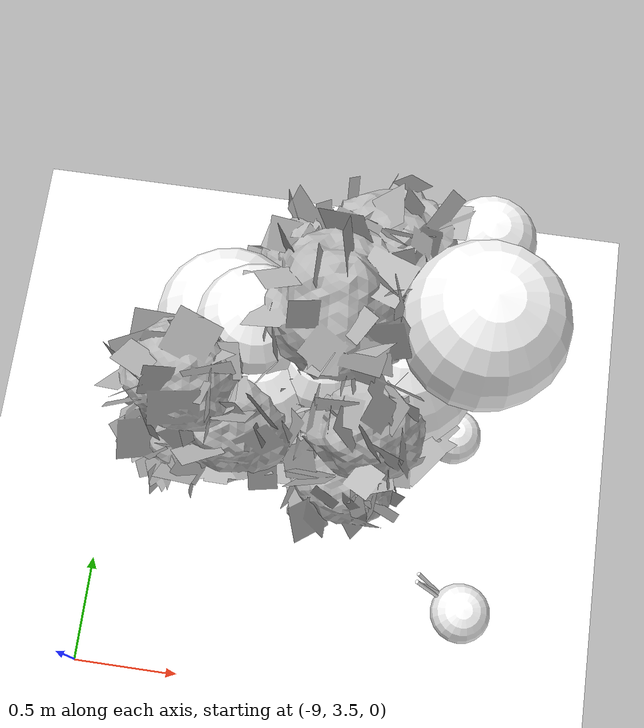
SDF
<sdf version="1.11">
 <world name="peach_orchard">
  <model name="ground">
   <static>true</static>
   <link name="link">
    <visual name="soil">
     <geometry><plane><normal>0 0 1</normal><size>32 22</size></plane></geometry>
     <material>
      <ambient>1 1 1 1</ambient>
      <diffuse>1 1 1 1</diffuse>
      <specular>0.1 0.1 0.1 1</specular>
      <pbr>
       <metal>
        <albedo_map>textures/soil_albedo.png</albedo_map>
        <normal_map type="tangent">textures/soil_normal.png</normal_map>
        <roughness>0.95</roughness>
        <metalness>0</metalness>
       </metal>
      </pbr>
     </material>
    </visual>
    <collision name="c_soil">
     <geometry><plane><normal>0 0 1</normal><size>32 22</size></plane></geometry>
    </collision>
   </link>
  </model>
  <model name="tree_r0_t5">
   <pose>-8 4.4 0 0 0 0</pose>
   <static>true</static>
   <link name="link">
    <visual name="tree_mesh">
     <pose>0 0 0 0 0 -0.231092</pose>
     <geometry>
      <mesh><uri>model://peach_sim/meshes/peach_tree_b.glb</uri><scale>0.994972 0.994972 0.994972</scale></mesh>
     </geometry>
    </visual>
    <visual name="trunk_0">
     <pose>0 0 0.173514 0 0 0</pose>
     <geometry><cylinder><radius>0.0532419</radius><length>0.347028</length></cylinder></geometry>
     <material>
      <ambient>1 1 1 1</ambient>
      <diffuse>1 1 1 1</diffuse>
      <specular>0.1 0.1 0.1 1</specular>
      <pbr>
       <metal>
        <albedo_map>textures/bark_albedo.png</albedo_map>
        <normal_map type="tangent">textures/bark_normal.png</normal_map>
        <roughness>0.9</roughness>
        <metalness>0</metalness>
       </metal>
      </pbr>
     </material>
    </visual>
    <collision name="c_trunk_0">
     <pose>0 0 0.173514 0 0 0</pose>
     <geometry><cylinder><radius>0.0532419</radius><length>0.347028</length></cylinder></geometry>
    </collision>
    <visual name="trunk_1">
     <pose>0 0 0.488994 0 0 0</pose>
     <geometry><cylinder><radius>0.0383341</radius><length>0.283932</length></cylinder></geometry>
     <material>
      <ambient>1 1 1 1</ambient>
      <diffuse>1 1 1 1</diffuse>
      <specular>0.1 0.1 0.1 1</specular>
      <pbr>
       <metal>
        <albedo_map>textures/bark_albedo.png</albedo_map>
        <normal_map type="tangent">textures/bark_normal.png</normal_map>
        <roughness>0.9</roughness>
        <metalness>0</metalness>
       </metal>
      </pbr>
     </material>
    </visual>
    <collision name="c_trunk_1">
     <pose>0 0 0.488994 0 0 0</pose>
     <geometry><cylinder><radius>0.0383341</radius><length>0.283932</length></cylinder></geometry>
    </collision>
    <visual name="root_flare">
     <pose>0 0 0.035 0 0 0</pose>
     <geometry><cylinder><radius>0.0772007</radius><length>0.07</length></cylinder></geometry>
     <material>
      <ambient>1 1 1 1</ambient>
      <diffuse>1 1 1 1</diffuse>
      <specular>0.1 0.1 0.1 1</specular>
      <pbr>
       <metal>
        <albedo_map>textures/bark_albedo.png</albedo_map>
        <normal_map type="tangent">textures/bark_normal.png</normal_map>
        <roughness>0.95</roughness>
        <metalness>0</metalness>
       </metal>
      </pbr>
     </material>
    </visual>
    <visual name="scaffold_0">
     <pose>0.0431711 0.266006 0.738035 0 1.04175 1.40991</pose>
     <geometry><cylinder><radius>0.022</radius><length>0.624326</length></cylinder></geometry>
     <material>
      <ambient>1 1 1 1</ambient>
      <diffuse>1 1 1 1</diffuse>
      <specular>0.1 0.1 0.1 1</specular>
      <pbr>
       <metal>
        <albedo_map>textures/bark_albedo.png</albedo_map>
        <normal_map type="tangent">textures/bark_normal.png</normal_map>
        <roughness>0.9</roughness>
        <metalness>0</metalness>
       </metal>
      </pbr>
     </material>
    </visual>
    <collision name="c_scaffold_0">
     <pose>0.0431711 0.266006 0.738035 0 1.04175 1.40991</pose>
     <geometry><cylinder><radius>0.022</radius><length>0.624326</length></cylinder></geometry>
    </collision>
    <visual name="branchlet_0_0">
     <pose>0.138375 0.285972 0.842998 0 1.0037 -0.553195</pose>
     <geometry><cylinder><radius>0.012</radius><length>0.232941</length></cylinder></geometry>
     <material>
      <ambient>1 1 1 1</ambient>
      <diffuse>1 1 1 1</diffuse>
      <specular>0.1 0.1 0.1 1</specular>
      <pbr>
       <metal>
        <albedo_map>textures/bark_albedo.png</albedo_map>
        <normal_map type="tangent">textures/bark_normal.png</normal_map>
        <roughness>0.9</roughness>
        <metalness>0</metalness>
       </metal>
      </pbr>
     </material>
    </visual>
    <visual name="branchlet_0_1">
     <pose>0.0907012 0.371886 0.729201 0 1.69532 1.12961</pose>
     <geometry><cylinder><radius>0.012</radius><length>0.21825</length></cylinder></geometry>
     <material>
      <ambient>1 1 1 1</ambient>
      <diffuse>1 1 1 1</diffuse>
      <specular>0.1 0.1 0.1 1</specular>
      <pbr>
       <metal>
        <albedo_map>textures/bark_albedo.png</albedo_map>
        <normal_map type="tangent">textures/bark_normal.png</normal_map>
        <roughness>0.9</roughness>
        <metalness>0</metalness>
       </metal>
      </pbr>
     </material>
    </visual>
    <visual name="scaffold_1">
     <pose>0.217392 0.325752 0.846363 0 0.974367 0.982318</pose>
     <geometry><cylinder><radius>0.022</radius><length>0.946712</length></cylinder></geometry>
     <material>
      <ambient>1 1 1 1</ambient>
      <diffuse>1 1 1 1</diffuse>
      <specular>0.1 0.1 0.1 1</specular>
      <pbr>
       <metal>
        <albedo_map>textures/bark_albedo.png</albedo_map>
        <normal_map type="tangent">textures/bark_normal.png</normal_map>
        <roughness>0.9</roughness>
        <metalness>0</metalness>
       </metal>
      </pbr>
     </material>
    </visual>
    <collision name="c_scaffold_1">
     <pose>0.217392 0.325752 0.846363 0 0.974367 0.982318</pose>
     <geometry><cylinder><radius>0.022</radius><length>0.946712</length></cylinder></geometry>
    </collision>
    <visual name="branchlet_1_0">
     <pose>0.335223 0.468588 0.955105 0 1.05842 0.854773</pose>
     <geometry><cylinder><radius>0.012</radius><length>0.337757</length></cylinder></geometry>
     <material>
      <ambient>1 1 1 1</ambient>
      <diffuse>1 1 1 1</diffuse>
      <specular>0.1 0.1 0.1 1</specular>
      <pbr>
       <metal>
        <albedo_map>textures/bark_albedo.png</albedo_map>
        <normal_map type="tangent">textures/bark_normal.png</normal_map>
        <roughness>0.9</roughness>
        <metalness>0</metalness>
       </metal>
      </pbr>
     </material>
    </visual>
    <visual name="branchlet_1_1">
     <pose>0.346254 0.442719 1.01414 0 0.685237 0.449972</pose>
     <geometry><cylinder><radius>0.012</radius><length>0.263119</length></cylinder></geometry>
     <material>
      <ambient>1 1 1 1</ambient>
      <diffuse>1 1 1 1</diffuse>
      <specular>0.1 0.1 0.1 1</specular>
      <pbr>
       <metal>
        <albedo_map>textures/bark_albedo.png</albedo_map>
        <normal_map type="tangent">textures/bark_normal.png</normal_map>
        <roughness>0.9</roughness>
        <metalness>0</metalness>
       </metal>
      </pbr>
     </material>
    </visual>
    <visual name="branchlet_1_2">
     <pose>0.533571 0.56704 1.0288 0 1.68118 -0.0197474</pose>
     <geometry><cylinder><radius>0.012</radius><length>0.308208</length></cylinder></geometry>
     <material>
      <ambient>1 1 1 1</ambient>
      <diffuse>1 1 1 1</diffuse>
      <specular>0.1 0.1 0.1 1</specular>
      <pbr>
       <metal>
        <albedo_map>textures/bark_albedo.png</albedo_map>
        <normal_map type="tangent">textures/bark_normal.png</normal_map>
        <roughness>0.9</roughness>
        <metalness>0</metalness>
       </metal>
      </pbr>
     </material>
    </visual>
    <visual name="scaffold_2">
     <pose>-0.273373 0.190528 0.803412 0 0.981165 2.53291</pose>
     <geometry><cylinder><radius>0.022</radius><length>0.801825</length></cylinder></geometry>
     <material>
      <ambient>1 1 1 1</ambient>
      <diffuse>1 1 1 1</diffuse>
      <specular>0.1 0.1 0.1 1</specular>
      <pbr>
       <metal>
        <albedo_map>textures/bark_albedo.png</albedo_map>
        <normal_map type="tangent">textures/bark_normal.png</normal_map>
        <roughness>0.9</roughness>
        <metalness>0</metalness>
       </metal>
      </pbr>
     </material>
    </visual>
    <collision name="c_scaffold_2">
     <pose>-0.273373 0.190528 0.803412 0 0.981165 2.53291</pose>
     <geometry><cylinder><radius>0.022</radius><length>0.801825</length></cylinder></geometry>
    </collision>
    <visual name="branchlet_2_0">
     <pose>-0.302135 0.119543 0.84948 0 1.73976 -1.15648</pose>
     <geometry><cylinder><radius>0.012</radius><length>0.290933</length></cylinder></geometry>
     <material>
      <ambient>1 1 1 1</ambient>
      <diffuse>1 1 1 1</diffuse>
      <specular>0.1 0.1 0.1 1</specular>
      <pbr>
       <metal>
        <albedo_map>textures/bark_albedo.png</albedo_map>
        <normal_map type="tangent">textures/bark_normal.png</normal_map>
        <roughness>0.9</roughness>
        <metalness>0</metalness>
       </metal>
      </pbr>
     </material>
    </visual>
    <visual name="branchlet_2_1">
     <pose>-0.455017 0.338538 0.85582 0 1.85685 2.37086</pose>
     <geometry><cylinder><radius>0.012</radius><length>0.226978</length></cylinder></geometry>
     <material>
      <ambient>1 1 1 1</ambient>
      <diffuse>1 1 1 1</diffuse>
      <specular>0.1 0.1 0.1 1</specular>
      <pbr>
       <metal>
        <albedo_map>textures/bark_albedo.png</albedo_map>
        <normal_map type="tangent">textures/bark_normal.png</normal_map>
        <roughness>0.9</roughness>
        <metalness>0</metalness>
       </metal>
      </pbr>
     </material>
    </visual>
    <visual name="canopy_0">
     <pose>-0.235806 0.283408 1.81937 0 0 0</pose>
     <geometry><sphere><radius>0.231589</radius></sphere></geometry>
     <material>
      <ambient>1 1 1 1</ambient>
      <diffuse>1 1 1 1</diffuse>
      <specular>0.1 0.1 0.1 1</specular>
      <pbr>
       <metal>
        <albedo_map>textures/leaf_albedo.png</albedo_map>
        <normal_map type="tangent">textures/leaf_normal.png</normal_map>
        <roughness>0.85</roughness>
        <metalness>0</metalness>
       </metal>
      </pbr>
     </material>
    </visual>
    <collision name="c_canopy_0">
     <pose>-0.235806 0.283408 1.81937 0 0 0</pose>
     <geometry><sphere><radius>0.231589</radius></sphere></geometry>
    </collision>
    <visual name="canopy_1">
     <pose>0.558558 0.32164 2.04155 0 0 0</pose>
     <geometry><sphere><radius>0.300082</radius></sphere></geometry>
     <material>
      <ambient>1 1 1 1</ambient>
      <diffuse>1 1 1 1</diffuse>
      <specular>0.1 0.1 0.1 1</specular>
      <pbr>
       <metal>
        <albedo_map>textures/leaf_albedo.png</albedo_map>
        <normal_map type="tangent">textures/leaf_normal.png</normal_map>
        <roughness>0.85</roughness>
        <metalness>0</metalness>
       </metal>
      </pbr>
     </material>
    </visual>
    <collision name="c_canopy_1">
     <pose>0.558558 0.32164 2.04155 0 0 0</pose>
     <geometry><sphere><radius>0.300082</radius></sphere></geometry>
    </collision>
    <visual name="canopy_2">
     <pose>-0.356228 0.358268 1.61443 0 0 0</pose>
     <geometry><sphere><radius>0.286201</radius></sphere></geometry>
     <material>
      <ambient>1 1 1 1</ambient>
      <diffuse>1 1 1 1</diffuse>
      <specular>0.1 0.1 0.1 1</specular>
      <pbr>
       <metal>
        <albedo_map>textures/leaf_albedo.png</albedo_map>
        <normal_map type="tangent">textures/leaf_normal.png</normal_map>
        <roughness>0.85</roughness>
        <metalness>0</metalness>
       </metal>
      </pbr>
     </material>
    </visual>
    <collision name="c_canopy_2">
     <pose>-0.356228 0.358268 1.61443 0 0 0</pose>
     <geometry><sphere><radius>0.286201</radius></sphere></geometry>
    </collision>
    <visual name="canopy_3">
     <pose>-0.201763 0.13919 1.6301 0 0 0</pose>
     <geometry><sphere><radius>0.289838</radius></sphere></geometry>
     <material>
      <ambient>1 1 1 1</ambient>
      <diffuse>1 1 1 1</diffuse>
      <specular>0.1 0.1 0.1 1</specular>
      <pbr>
       <metal>
        <albedo_map>textures/leaf_albedo.png</albedo_map>
        <normal_map type="tangent">textures/leaf_normal.png</normal_map>
        <roughness>0.85</roughness>
        <metalness>0</metalness>
       </metal>
      </pbr>
     </material>
    </visual>
    <visual name="canopy_4">
     <pose>0.594792 0.839419 1.58355 0 0 0</pose>
     <geometry><sphere><radius>0.185825</radius></sphere></geometry>
     <material>
      <ambient>1 1 1 1</ambient>
      <diffuse>1 1 1 1</diffuse>
      <specular>0.1 0.1 0.1 1</specular>
      <pbr>
       <metal>
        <albedo_map>textures/leaf_albedo.png</albedo_map>
        <normal_map type="tangent">textures/leaf_normal.png</normal_map>
        <roughness>0.85</roughness>
        <metalness>0</metalness>
       </metal>
      </pbr>
     </material>
    </visual>
    <visual name="canopy_5">
     <pose>-0.350078 0.395172 1.60079 0 0 0</pose>
     <geometry><sphere><radius>0.22578</radius></sphere></geometry>
     <material>
      <ambient>1 1 1 1</ambient>
      <diffuse>1 1 1 1</diffuse>
      <specular>0.1 0.1 0.1 1</specular>
      <pbr>
       <metal>
        <albedo_map>textures/leaf_albedo.png</albedo_map>
        <normal_map type="tangent">textures/leaf_normal.png</normal_map>
        <roughness>0.85</roughness>
        <metalness>0</metalness>
       </metal>
      </pbr>
     </material>
    </visual>
    <visual name="canopy_6">
     <pose>0.294445 0.262942 1.62518 0 0 0</pose>
     <geometry><sphere><radius>0.31555</radius></sphere></geometry>
     <material>
      <ambient>1 1 1 1</ambient>
      <diffuse>1 1 1 1</diffuse>
      <specular>0.1 0.1 0.1 1</specular>
      <pbr>
       <metal>
        <albedo_map>textures/leaf_albedo.png</albedo_map>
        <normal_map type="tangent">textures/leaf_normal.png</normal_map>
        <roughness>0.85</roughness>
        <metalness>0</metalness>
       </metal>
      </pbr>
     </material>
    </visual>
    <visual name="canopy_7">
     <pose>0.0256436 0.22055 1.71165 0 0 0</pose>
     <geometry><sphere><radius>0.252655</radius></sphere></geometry>
     <material>
      <ambient>1 1 1 1</ambient>
      <diffuse>1 1 1 1</diffuse>
      <specular>0.1 0.1 0.1 1</specular>
      <pbr>
       <metal>
        <albedo_map>textures/leaf_albedo.png</albedo_map>
        <normal_map type="tangent">textures/leaf_normal.png</normal_map>
        <roughness>0.85</roughness>
        <metalness>0</metalness>
       </metal>
      </pbr>
     </material>
    </visual>
    <visual name="foliage_0">
     <pose>0.559798 0.0951476 1.37988 0 0 0</pose>
     <geometry><sphere><radius>0.10821</radius></sphere></geometry>
     <material>
      <ambient>1 1 1 1</ambient>
      <diffuse>1 1 1 1</diffuse>
      <specular>0.1 0.1 0.1 1</specular>
      <pbr>
       <metal>
        <albedo_map>textures/leaf_albedo.png</albedo_map>
        <normal_map type="tangent">textures/leaf_normal.png</normal_map>
        <roughness>0.85</roughness>
        <metalness>0</metalness>
       </metal>
      </pbr>
     </material>
    </visual>
    <visual name="foliage_4">
     <pose>0.274675 0.0840009 1.40272 0 0 0</pose>
     <geometry><sphere><radius>0.0822232</radius></sphere></geometry>
     <material>
      <ambient>1 1 1 1</ambient>
      <diffuse>1 1 1 1</diffuse>
      <specular>0.1 0.1 0.1 1</specular>
      <pbr>
       <metal>
        <albedo_map>textures/leaf_albedo.png</albedo_map>
        <normal_map type="tangent">textures/leaf_normal.png</normal_map>
        <roughness>0.85</roughness>
        <metalness>0</metalness>
       </metal>
      </pbr>
     </material>
    </visual>
    <visual name="foliage_8">
     <pose>0.647204 -0.599992 1.46526 0 0 0</pose>
     <geometry><sphere><radius>0.111556</radius></sphere></geometry>
     <material>
      <ambient>1 1 1 1</ambient>
      <diffuse>1 1 1 1</diffuse>
      <specular>0.1 0.1 0.1 1</specular>
      <pbr>
       <metal>
        <albedo_map>textures/leaf_albedo.png</albedo_map>
        <normal_map type="tangent">textures/leaf_normal.png</normal_map>
        <roughness>0.85</roughness>
        <metalness>0</metalness>
       </metal>
      </pbr>
     </material>
    </visual>
    <visual name="twig_0">
     <pose>0.494867 0.0237482 1.54812 0 0.575614 3.09362</pose>
     <geometry><cylinder><radius>0.007</radius><length>0.142783</length></cylinder></geometry>
     <material>
      <ambient>1 1 1 1</ambient>
      <diffuse>1 1 1 1</diffuse>
      <specular>0.1 0.1 0.1 1</specular>
      <pbr>
       <metal>
        <albedo_map>textures/bark_albedo.png</albedo_map>
        <normal_map type="tangent">textures/bark_normal.png</normal_map>
        <roughness>0.9</roughness>
        <metalness>0</metalness>
       </metal>
      </pbr>
     </material>
    </visual>
    <visual name="twig_1">
     <pose>0.526332 0.171996 1.58178 0 0.517045 -2.84253</pose>
     <geometry><cylinder><radius>0.007</radius><length>0.119262</length></cylinder></geometry>
     <material>
      <ambient>1 1 1 1</ambient>
      <diffuse>1 1 1 1</diffuse>
      <specular>0.1 0.1 0.1 1</specular>
      <pbr>
       <metal>
        <albedo_map>textures/bark_albedo.png</albedo_map>
        <normal_map type="tangent">textures/bark_normal.png</normal_map>
        <roughness>0.9</roughness>
        <metalness>0</metalness>
       </metal>
      </pbr>
     </material>
    </visual>
    <visual name="twig_2">
     <pose>0.542515 0.31813 1.57168 0 0.541601 -2.56494</pose>
     <geometry><cylinder><radius>0.007</radius><length>0.14552</length></cylinder></geometry>
     <material>
      <ambient>1 1 1 1</ambient>
      <diffuse>1 1 1 1</diffuse>
      <specular>0.1 0.1 0.1 1</specular>
      <pbr>
       <metal>
        <albedo_map>textures/bark_albedo.png</albedo_map>
        <normal_map type="tangent">textures/bark_normal.png</normal_map>
        <roughness>0.9</roughness>
        <metalness>0</metalness>
       </metal>
      </pbr>
     </material>
    </visual>
    <visual name="twig_3">
     <pose>0.518916 0.484264 1.61091 0 0.374617 2.87783</pose>
     <geometry><cylinder><radius>0.007</radius><length>0.193298</length></cylinder></geometry>
     <material>
      <ambient>1 1 1 1</ambient>
      <diffuse>1 1 1 1</diffuse>
      <specular>0.1 0.1 0.1 1</specular>
      <pbr>
       <metal>
        <albedo_map>textures/bark_albedo.png</albedo_map>
        <normal_map type="tangent">textures/bark_normal.png</normal_map>
        <roughness>0.9</roughness>
        <metalness>0</metalness>
       </metal>
      </pbr>
     </material>
    </visual>
    <visual name="twig_4">
     <pose>0.197958 0.056079 1.48473 0 0.270247 -2.83733</pose>
     <geometry><cylinder><radius>0.007</radius><length>0.219596</length></cylinder></geometry>
     <material>
      <ambient>1 1 1 1</ambient>
      <diffuse>1 1 1 1</diffuse>
      <specular>0.1 0.1 0.1 1</specular>
      <pbr>
       <metal>
        <albedo_map>textures/bark_albedo.png</albedo_map>
        <normal_map type="tangent">textures/bark_normal.png</normal_map>
        <roughness>0.9</roughness>
        <metalness>0</metalness>
       </metal>
      </pbr>
     </material>
    </visual>
    <visual name="twig_5">
     <pose>0.206937 -0.144458 1.42949 0 0.2016 2.76334</pose>
     <geometry><cylinder><radius>0.007</radius><length>0.102024</length></cylinder></geometry>
     <material>
      <ambient>1 1 1 1</ambient>
      <diffuse>1 1 1 1</diffuse>
      <specular>0.1 0.1 0.1 1</specular>
      <pbr>
       <metal>
        <albedo_map>textures/bark_albedo.png</albedo_map>
        <normal_map type="tangent">textures/bark_normal.png</normal_map>
        <roughness>0.9</roughness>
        <metalness>0</metalness>
       </metal>
      </pbr>
     </material>
    </visual>
    <visual name="twig_6">
     <pose>0.224601 -0.231328 1.4354 0 0.21656 -2.69178</pose>
     <geometry><cylinder><radius>0.007</radius><length>0.174463</length></cylinder></geometry>
     <material>
      <ambient>1 1 1 1</ambient>
      <diffuse>1 1 1 1</diffuse>
      <specular>0.1 0.1 0.1 1</specular>
      <pbr>
       <metal>
        <albedo_map>textures/bark_albedo.png</albedo_map>
        <normal_map type="tangent">textures/bark_normal.png</normal_map>
        <roughness>0.9</roughness>
        <metalness>0</metalness>
       </metal>
      </pbr>
     </material>
    </visual>
    <visual name="twig_7">
     <pose>0.518139 -0.512692 1.50528 0 0.7023 2.71704</pose>
     <geometry><cylinder><radius>0.007</radius><length>0.159843</length></cylinder></geometry>
     <material>
      <ambient>1 1 1 1</ambient>
      <diffuse>1 1 1 1</diffuse>
      <specular>0.1 0.1 0.1 1</specular>
      <pbr>
       <metal>
        <albedo_map>textures/bark_albedo.png</albedo_map>
        <normal_map type="tangent">textures/bark_normal.png</normal_map>
        <roughness>0.9</roughness>
        <metalness>0</metalness>
       </metal>
      </pbr>
     </material>
    </visual>
    <visual name="twig_8">
     <pose>0.502979 -0.547243 1.60705 0 0.465791 3.00647</pose>
     <geometry><cylinder><radius>0.007</radius><length>0.211319</length></cylinder></geometry>
     <material>
      <ambient>1 1 1 1</ambient>
      <diffuse>1 1 1 1</diffuse>
      <specular>0.1 0.1 0.1 1</specular>
      <pbr>
       <metal>
        <albedo_map>textures/bark_albedo.png</albedo_map>
        <normal_map type="tangent">textures/bark_normal.png</normal_map>
        <roughness>0.9</roughness>
        <metalness>0</metalness>
       </metal>
      </pbr>
     </material>
    </visual>
    <visual name="twig_9">
     <pose>0.517355 -0.539629 1.56929 0 0.642743 3.00827</pose>
     <geometry><cylinder><radius>0.007</radius><length>0.1133</length></cylinder></geometry>
     <material>
      <ambient>1 1 1 1</ambient>
      <diffuse>1 1 1 1</diffuse>
      <specular>0.1 0.1 0.1 1</specular>
      <pbr>
       <metal>
        <albedo_map>textures/bark_albedo.png</albedo_map>
        <normal_map type="tangent">textures/bark_normal.png</normal_map>
        <roughness>0.9</roughness>
        <metalness>0</metalness>
       </metal>
      </pbr>
     </material>
    </visual>
   </link>
  </model>
 </world>
</sdf>
